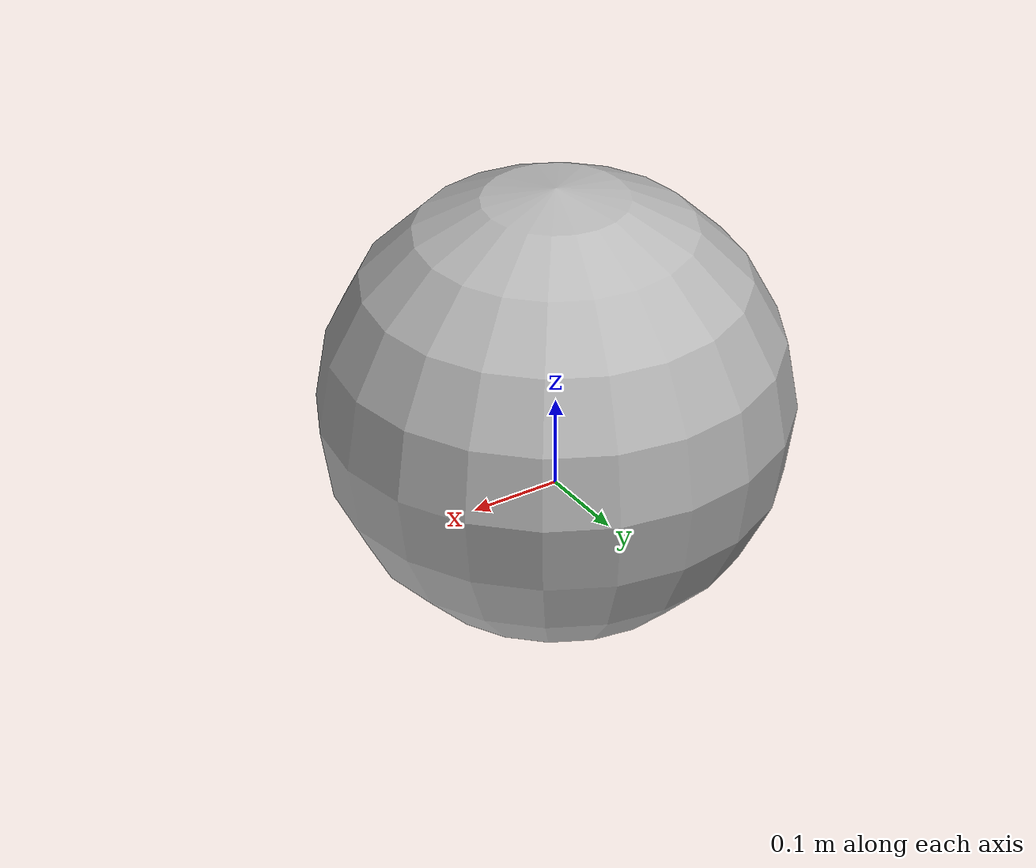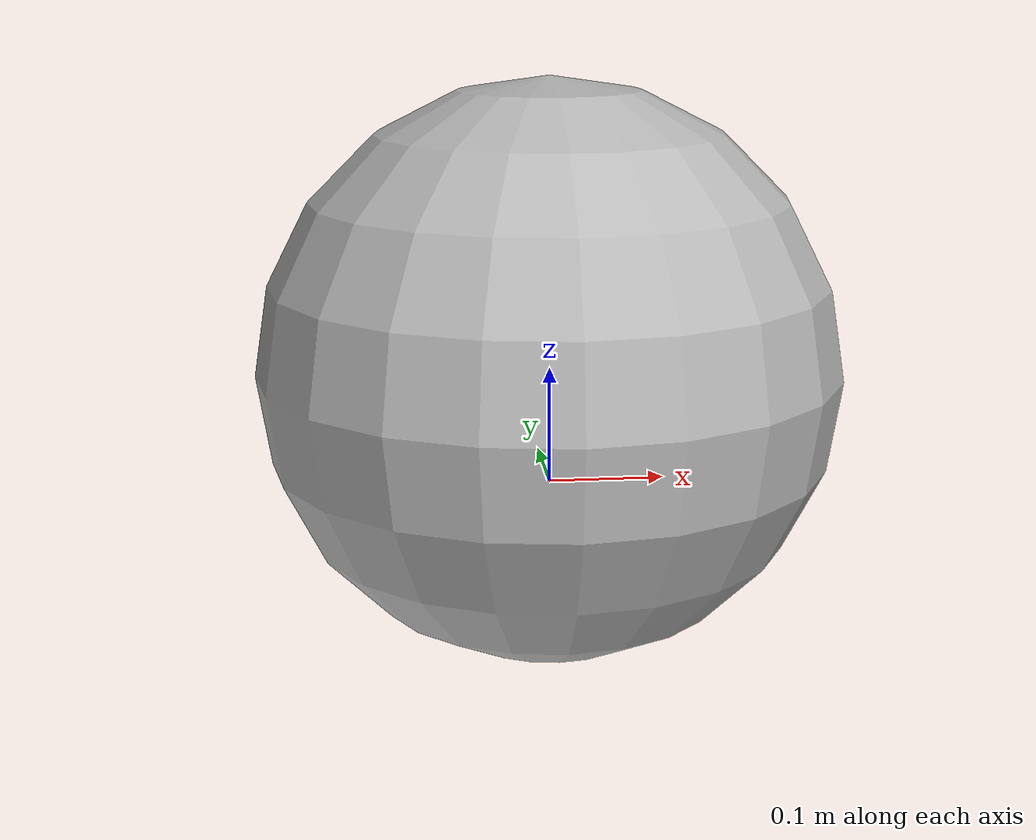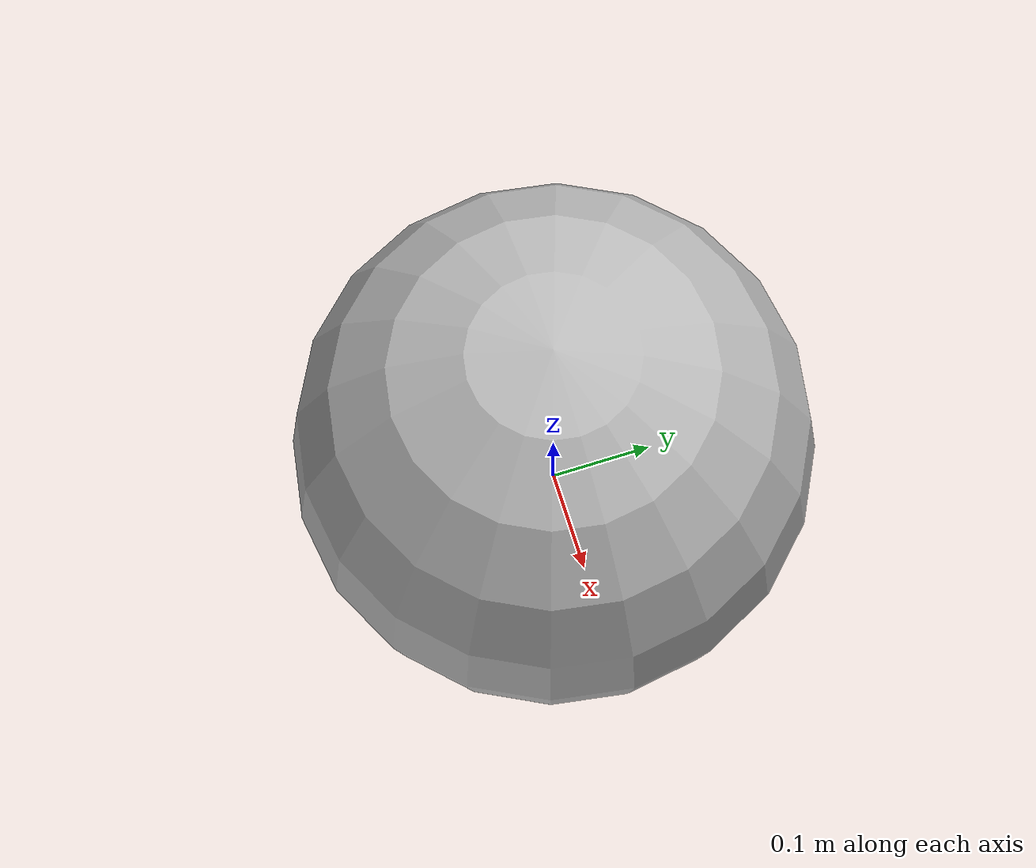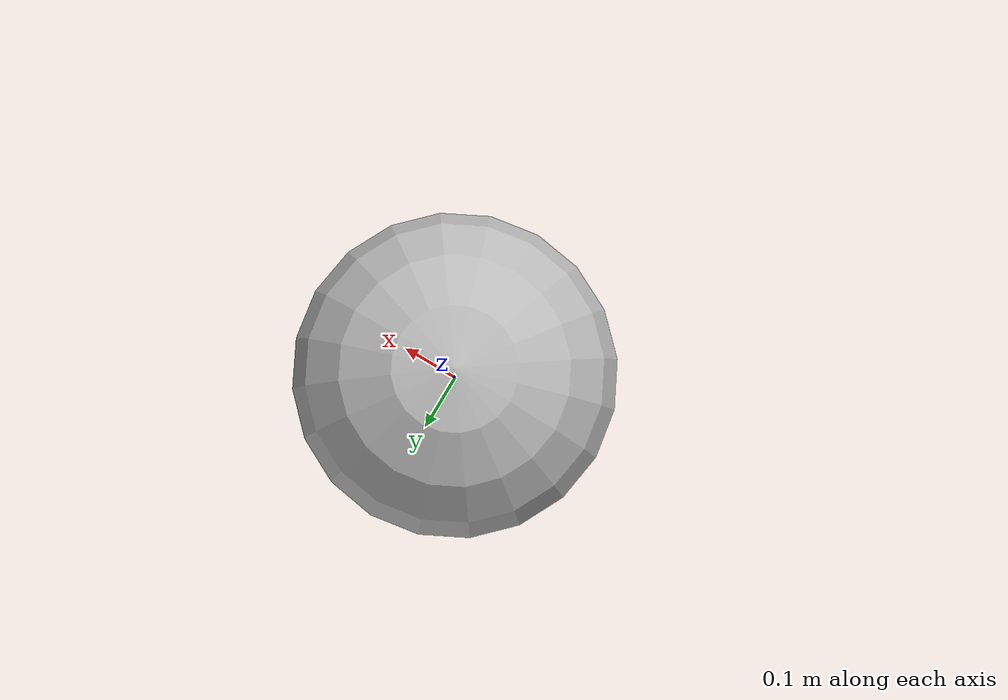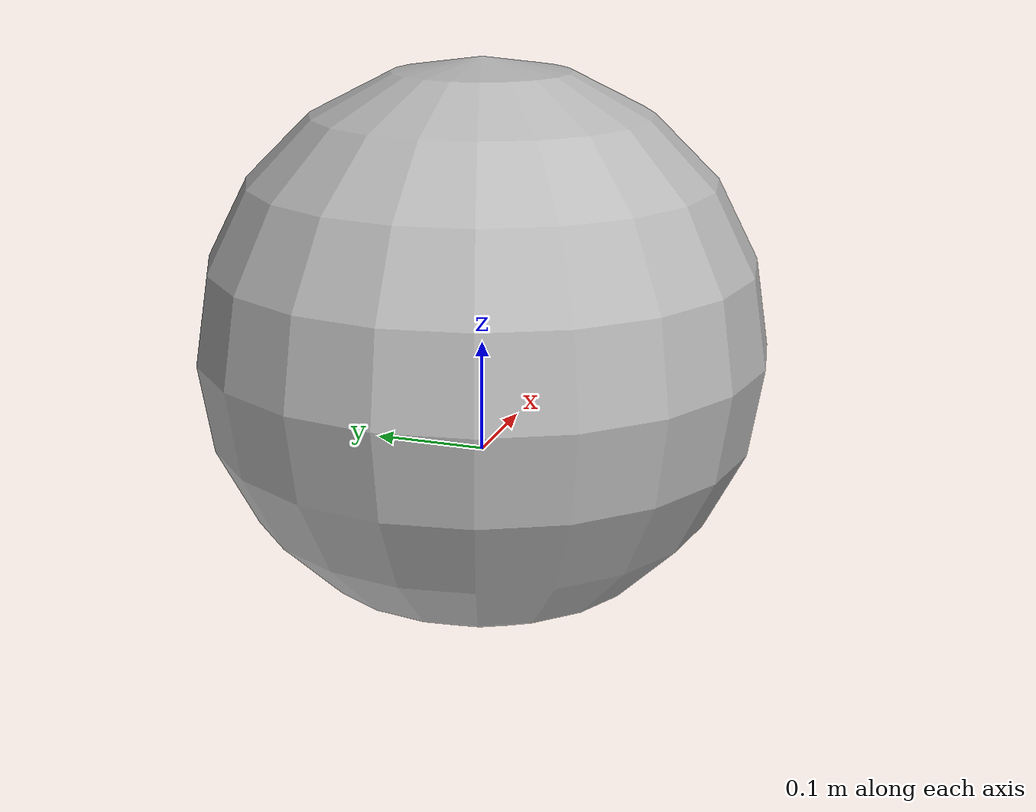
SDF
<?xml version="1.0" ?>
<sdf version="1.5">
  <model name="ball_orange">
	  <static>0</static>
	<link name="link">
      <pose>0 0 0.1 0 0 0</pose>
      <inertial>
        <mass>0.3</mass>
        <inertia>
          <ixx>0.08611666666666669</ixx>
          <ixy>0</ixy>
          <ixz>0</ixz>
          <iyy>0.08611666666666669</iyy>
          <iyz>0</iyz>
          <izz>0.08611666666666669</izz>
        </inertia>
      </inertial>

      <collision name="collision_ball">
        <pose>0 0 2.0 0 0 0</pose>
        <geometry>
          <sphere>
            <radius>0.25</radius>
          </sphere>
        </geometry>
        <surface>
          <contact>
            <poissons_ratio>0.347</poissons_ratio>
            <elastic_modulus>8.8e+09</elastic_modulus>
            <ode>
              <kp>100000</kp>
              <kd>100</kd>
              <max_vel>100.0</max_vel>
              <min_depth>0.001</min_depth>
            </ode>
          </contact>
          <friction>
            <torsional>
              <coefficient>1.0</coefficient>
              <use_patch_radius>0</use_patch_radius>
              <surface_radius>0.01</surface_radius>
            </torsional>
          </friction>
        </surface>
      </collision>

      <visual name="ball">
        <pose>0 0 0 0 0 0</pose>
        <geometry>
          <sphere>
            <radius>0.25</radius>
          </sphere>
        </geometry>
        <material>
          <script>
            <uri>model://ball_orange/scripts</uri>
            <uri>model://ball_orange/materials/textures</uri>
            <name>BallOrange/ball</name>
          </script>
        </material>
      </visual>

    </link>
  </model>
</sdf>
